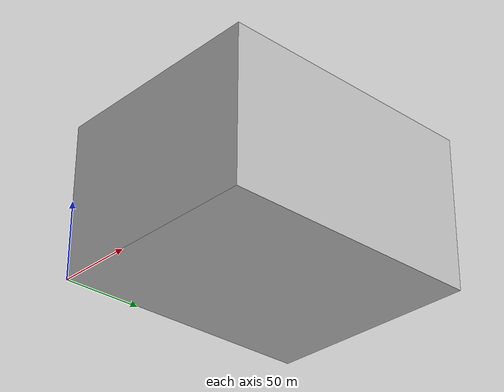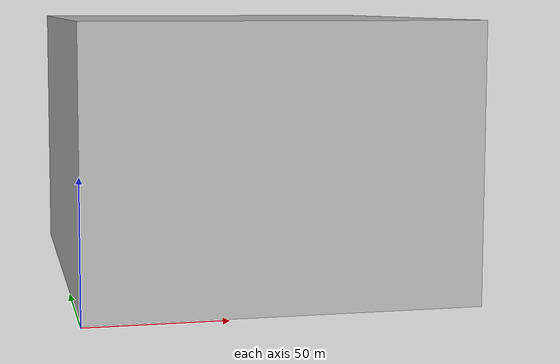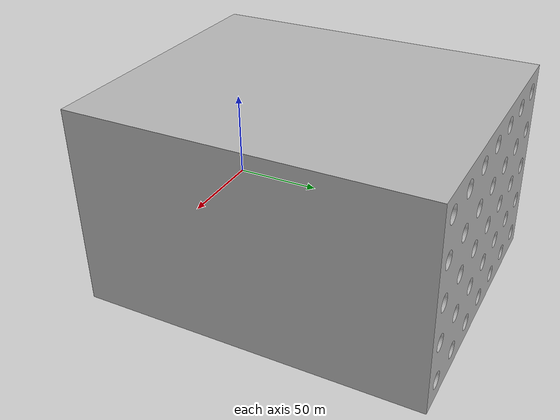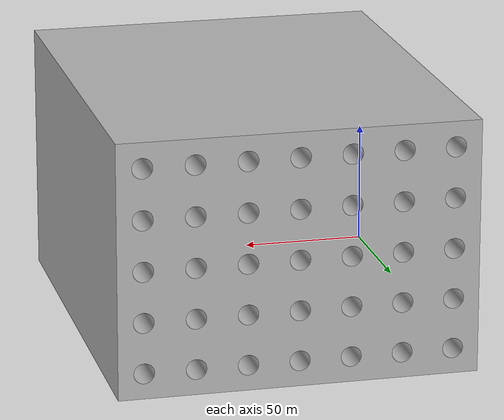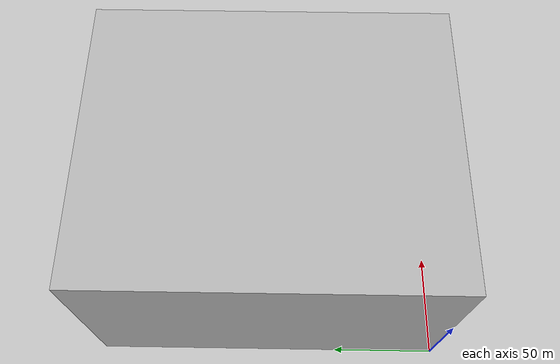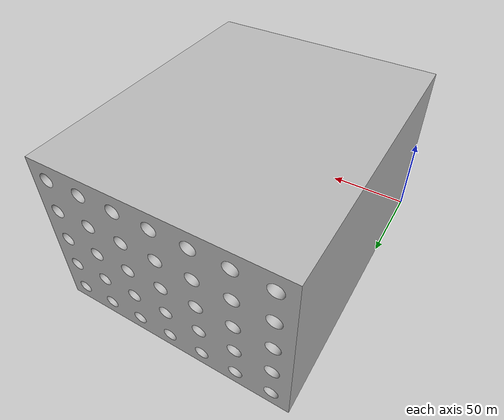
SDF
<?xml version='1.0'?>
<sdf version="1.4">
  <model name="box">
    <pose>0 0 0.5 0 0 0</pose>
    <static>true</static>
    <link name="link">
      <collision name="collision">
        <geometry>
          <mesh>
            <uri>meshes/box.STL</uri>
          <scale>1 1 1</scale>
          </mesh>
        </geometry>
      </collision>

      <visual name="visual">
        <geometry>
          <mesh>
            <uri>meshes/box.STL</uri>
          <scale>1 1 1</scale>
          </mesh>
        </geometry>
      </visual>

    </link>
  </model>
</sdf>
